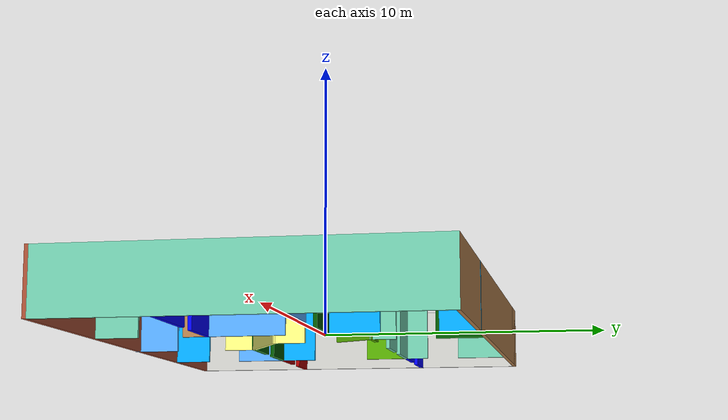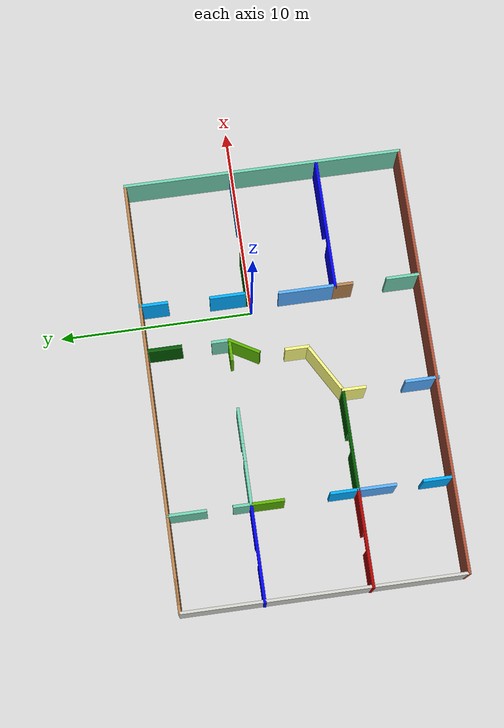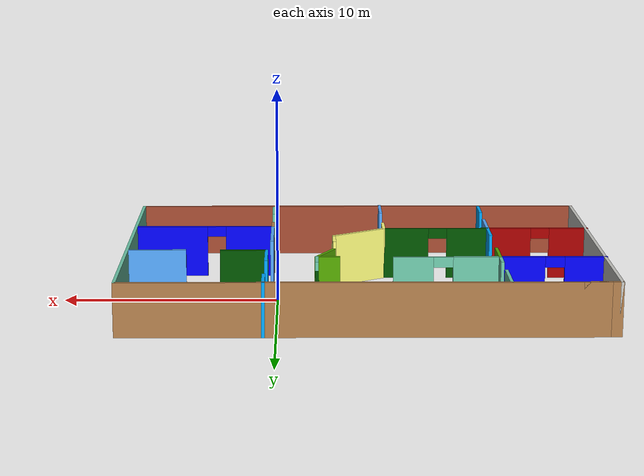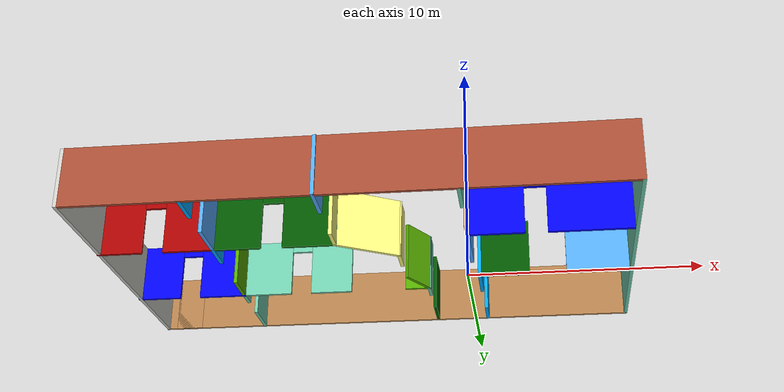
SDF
<?xml version='1.0'?>
<sdf version='1.6'>
  <model name='BuildingThree'>
    <pose frame=''>-4.03643 -1.5479 0 0 -0 0</pose>
    <link name='Wall_0'>
      <collision name='Wall_0_Collision'>
        <geometry>
          <box>
            <size>21.75 0.15 2.5</size>
          </box>
        </geometry>
        <pose frame=''>0 0 1.25 0 -0 0</pose>
      </collision>
      <visual name='Wall_0_Visual'>
        <pose frame=''>0 0 1.25 0 -0 0</pose>
        <geometry>
          <box>
            <size>21.75 0.15 2.5</size>
          </box>
        </geometry>
        <material>
          <script>
            <uri>file://media/materials/scripts/gazebo.material</uri>
            <name>Gazebo/Wood</name>
          </script>
          <ambient>1 1 1 1</ambient>
        </material>
        <meta>
          <layer>0</layer>
        </meta>
      </visual>
      <pose frame=''>0.266002 7.20676 0 0 -0 0</pose>
    </link>
    <link name='Wall_1'>
      <collision name='Wall_1_Collision'>
        <geometry>
          <box>
            <size>14.5 0.15 2.5</size>
          </box>
        </geometry>
        <pose frame=''>0 0 1.25 0 -0 0</pose>
      </collision>
      <visual name='Wall_1_Visual'>
        <pose frame=''>0 0 1.25 0 -0 0</pose>
        <geometry>
          <box>
            <size>14.5 0.15 2.5</size>
          </box>
        </geometry>
        <material>
          <script>
            <uri>file://media/materials/scripts/gazebo.material</uri>
            <name>Gazebo/Grey</name>
          </script>
          <ambient>0.435294 0.796078 0.67451 1</ambient>
        </material>
        <meta>
          <layer>0</layer>
        </meta>
      </visual>
      <pose frame=''>11.066 0.031757 0 0 0 -1.5708</pose>
    </link>
    <link name='Wall_10'>
      <pose frame=''>-8.641 -2.36931 0 0 -0 0</pose>
      <visual name='Wall_10_Visual_0'>
        <pose frame=''>-1.54369 0 1.25 0 -0 0</pose>
        <geometry>
          <box>
            <size>1.91262 0.15 2.5</size>
          </box>
        </geometry>
        <material>
          <script>
            <uri>file://media/materials/scripts/gazebo.material</uri>
            <name>Gazebo/Grey</name>
          </script>
          <ambient>0.666667 0 0 1</ambient>
        </material>
        <meta>
          <layer>0</layer>
        </meta>
      </visual>
      <collision name='Wall_10_Collision_0'>
        <geometry>
          <box>
            <size>1.91262 0.15 2.5</size>
          </box>
        </geometry>
        <pose frame=''>-1.54369 0 1.25 0 -0 0</pose>
      </collision>
      <visual name='Wall_10_Visual_1'>
        <pose frame=''>1.40631 0 1.25 0 -0 0</pose>
        <geometry>
          <box>
            <size>2.18738 0.15 2.5</size>
          </box>
        </geometry>
        <material>
          <script>
            <uri>file://media/materials/scripts/gazebo.material</uri>
            <name>Gazebo/Grey</name>
          </script>
          <ambient>0.666667 0 0 1</ambient>
        </material>
        <meta>
          <layer>0</layer>
        </meta>
      </visual>
      <collision name='Wall_10_Collision_1'>
        <geometry>
          <box>
            <size>2.18738 0.15 2.5</size>
          </box>
        </geometry>
        <pose frame=''>1.40631 0 1.25 0 -0 0</pose>
      </collision>
      <visual name='Wall_10_Visual_2'>
        <pose frame=''>-0.137383 0 2.25 0 -0 0</pose>
        <geometry>
          <box>
            <size>0.9 0.15 0.5</size>
          </box>
        </geometry>
        <material>
          <script>
            <uri>file://media/materials/scripts/gazebo.material</uri>
            <name>Gazebo/Grey</name>
          </script>
          <ambient>0.666667 0 0 1</ambient>
        </material>
        <meta>
          <layer>0</layer>
        </meta>
      </visual>
      <collision name='Wall_10_Collision_2'>
        <geometry>
          <box>
            <size>0.9 0.15 0.5</size>
          </box>
        </geometry>
        <pose frame=''>-0.137383 0 2.25 0 -0 0</pose>
      </collision>
    </link>
    <link name='Wall_11'>
      <collision name='Wall_11_Collision'>
        <geometry>
          <box>
            <size>2 0.15 2.5</size>
          </box>
        </geometry>
        <pose frame=''>0 0 1.25 0 -0 0</pose>
      </collision>
      <visual name='Wall_11_Visual'>
        <pose frame=''>0 0 1.25 0 -0 0</pose>
        <geometry>
          <box>
            <size>2 0.15 2.5</size>
          </box>
        </geometry>
        <material>
          <script>
            <uri>file://media/materials/scripts/gazebo.material</uri>
            <name>Gazebo/Grey</name>
          </script>
          <ambient>0.333333 0.666667 1 1</ambient>
        </material>
        <meta>
          <layer>0</layer>
        </meta>
      </visual>
      <pose frame=''>-6.216 -3.29431 0 0 0 -1.5708</pose>
    </link>
    <link name='Wall_13'>
      <collision name='Wall_13_Collision'>
        <geometry>
          <box>
            <size>1.5 0.15 2.5</size>
          </box>
        </geometry>
        <pose frame=''>0 0 1.25 0 -0 0</pose>
      </collision>
      <visual name='Wall_13_Visual'>
        <pose frame=''>0 0 1.25 0 -0 0</pose>
        <geometry>
          <box>
            <size>1.5 0.15 2.5</size>
          </box>
        </geometry>
        <material>
          <script>
            <uri>file://media/materials/scripts/gazebo.material</uri>
            <name>Gazebo/Grey</name>
          </script>
          <ambient>0 0.666667 1 1</ambient>
        </material>
        <meta>
          <layer>0</layer>
        </meta>
      </visual>
      <pose frame=''>-6.22477 -6.37595 0 0 -0 1.5708</pose>
    </link>
    <link name='Wall_15'>
      <collision name='Wall_15_Collision'>
        <geometry>
          <box>
            <size>2 0.15 2.5</size>
          </box>
        </geometry>
        <pose frame=''>0 0 1.25 0 -0 0</pose>
      </collision>
      <visual name='Wall_15_Visual'>
        <pose frame=''>0 0 1.25 0 -0 0</pose>
        <geometry>
          <box>
            <size>2 0.15 2.5</size>
          </box>
        </geometry>
        <material>
          <script>
            <uri>file://media/materials/scripts/gazebo.material</uri>
            <name>Gazebo/Grey</name>
          </script>
          <ambient>0.435294 0.796078 0.67451 1</ambient>
        </material>
        <meta>
          <layer>0</layer>
        </meta>
      </visual>
      <pose frame=''>-6.22477 6.22856 0 0 0 -1.5708</pose>
    </link>
    <link name='Wall_17'>
      <pose frame=''>-8.641 3.00393 0 0 -0 0</pose>
      <visual name='Wall_17_Visual_0'>
        <pose frame=''>-1.51709 0 1.25 0 -0 0</pose>
        <geometry>
          <box>
            <size>1.96582 0.15 2.5</size>
          </box>
        </geometry>
        <material>
          <script>
            <uri>file://media/materials/scripts/gazebo.material</uri>
            <name>Gazebo/Grey</name>
          </script>
          <ambient>0 0 1 1</ambient>
        </material>
        <meta>
          <layer>0</layer>
        </meta>
      </visual>
      <collision name='Wall_17_Collision_0'>
        <geometry>
          <box>
            <size>1.96582 0.15 2.5</size>
          </box>
        </geometry>
        <pose frame=''>-1.51709 0 1.25 0 -0 0</pose>
      </collision>
      <visual name='Wall_17_Visual_1'>
        <pose frame=''>1.43291 0 1.25 0 -0 0</pose>
        <geometry>
          <box>
            <size>2.13418 0.15 2.5</size>
          </box>
        </geometry>
        <material>
          <script>
            <uri>file://media/materials/scripts/gazebo.material</uri>
            <name>Gazebo/Grey</name>
          </script>
          <ambient>0 0 1 1</ambient>
        </material>
        <meta>
          <layer>0</layer>
        </meta>
      </visual>
      <collision name='Wall_17_Collision_1'>
        <geometry>
          <box>
            <size>2.13418 0.15 2.5</size>
          </box>
        </geometry>
        <pose frame=''>1.43291 0 1.25 0 -0 0</pose>
      </collision>
      <visual name='Wall_17_Visual_2'>
        <pose frame=''>-0.084182 0 2.25 0 -0 0</pose>
        <geometry>
          <box>
            <size>0.9 0.15 0.5</size>
          </box>
        </geometry>
        <material>
          <script>
            <uri>file://media/materials/scripts/gazebo.material</uri>
            <name>Gazebo/Grey</name>
          </script>
          <ambient>0 0 1 1</ambient>
        </material>
        <meta>
          <layer>0</layer>
        </meta>
      </visual>
      <collision name='Wall_17_Collision_2'>
        <geometry>
          <box>
            <size>0.9 0.15 0.5</size>
          </box>
        </geometry>
        <pose frame=''>-0.084182 0 2.25 0 -0 0</pose>
      </collision>
    </link>
    <link name='Wall_18'>
      <collision name='Wall_18_Collision'>
        <geometry>
          <box>
            <size>1 0.15 2.5</size>
          </box>
        </geometry>
        <pose frame=''>0 0 1.25 0 -0 0</pose>
      </collision>
      <visual name='Wall_18_Visual'>
        <pose frame=''>0 0 1.25 0 -0 0</pose>
        <geometry>
          <box>
            <size>1 0.15 2.5</size>
          </box>
        </geometry>
        <material>
          <script>
            <uri>file://media/materials/scripts/gazebo.material</uri>
            <name>Gazebo/Grey</name>
          </script>
          <ambient>0.435294 0.796078 0.67451 1</ambient>
        </material>
        <meta>
          <layer>0</layer>
        </meta>
      </visual>
      <pose frame=''>-6.216 3.42893 0 0 -0 1.5708</pose>
    </link>
    <link name='Wall_2'>
      <collision name='Wall_2_Collision'>
        <geometry>
          <box>
            <size>22.25 0.15 2.5</size>
          </box>
        </geometry>
        <pose frame=''>0 0 1.25 0 -0 0</pose>
      </collision>
      <visual name='Wall_2_Visual'>
        <pose frame=''>0 0 1.25 0 -0 0</pose>
        <geometry>
          <box>
            <size>22.25 0.15 2.5</size>
          </box>
        </geometry>
        <material>
          <script>
            <uri>file://media/materials/scripts/gazebo.material</uri>
            <name>Gazebo/Bricks</name>
          </script>
          <ambient>1 1 1 1</ambient>
        </material>
        <meta>
          <layer>0</layer>
        </meta>
      </visual>
      <pose frame=''>0.016002 -7.14324 0 0 -0 3.14159</pose>
    </link>
    <link name='Wall_20'>
      <collision name='Wall_20_Collision'>
        <geometry>
          <box>
            <size>1.75 0.15 2.5</size>
          </box>
        </geometry>
        <pose frame=''>0 0 1.25 0 -0 0</pose>
      </collision>
      <visual name='Wall_20_Visual'>
        <pose frame=''>0 0 1.25 0 -0 0</pose>
        <geometry>
          <box>
            <size>1.75 0.15 2.5</size>
          </box>
        </geometry>
        <material>
          <script>
            <uri>file://media/materials/scripts/gazebo.material</uri>
            <name>Gazebo/Grey</name>
          </script>
          <ambient>0.333333 0.666667 0 1</ambient>
        </material>
        <meta>
          <layer>0</layer>
        </meta>
      </visual>
      <pose frame=''>-6.216 2.20393 0 0 0 -1.5708</pose>
    </link>
    <link name='Wall_22'>
      <collision name='Wall_22_Collision'>
        <geometry>
          <box>
            <size>1.5 0.15 2.5</size>
          </box>
        </geometry>
        <pose frame=''>0 0 1.25 0 -0 0</pose>
      </collision>
      <visual name='Wall_22_Visual'>
        <pose frame=''>0 0 1.25 0 -0 0</pose>
        <geometry>
          <box>
            <size>1.5 0.15 2.5</size>
          </box>
        </geometry>
        <material>
          <script>
            <uri>file://media/materials/scripts/gazebo.material</uri>
            <name>Gazebo/Grey</name>
          </script>
          <ambient>0 0.666667 1 1</ambient>
        </material>
        <meta>
          <layer>0</layer>
        </meta>
      </visual>
      <pose frame=''>-6.216 -1.69431 0 0 -0 1.5708</pose>
    </link>
    <link name='Wall_24'>
      <pose frame=''>-3.666 -2.36931 0 0 -0 0</pose>
      <visual name='Wall_24_Visual_0'>
        <pose frame=''>-1.58253 0 1.25 0 -0 0</pose>
        <geometry>
          <box>
            <size>2.08493 0.15 2.5</size>
          </box>
        </geometry>
        <material>
          <script>
            <uri>file://media/materials/scripts/gazebo.material</uri>
            <name>Gazebo/Grey</name>
          </script>
          <ambient>0 0.333333 0 1</ambient>
        </material>
        <meta>
          <layer>0</layer>
        </meta>
      </visual>
      <collision name='Wall_24_Collision_0'>
        <geometry>
          <box>
            <size>2.08493 0.15 2.5</size>
          </box>
        </geometry>
        <pose frame=''>-1.58253 0 1.25 0 -0 0</pose>
      </collision>
      <visual name='Wall_24_Visual_1'>
        <pose frame=''>1.49247 0 1.25 0 -0 0</pose>
        <geometry>
          <box>
            <size>2.26507 0.15 2.5</size>
          </box>
        </geometry>
        <material>
          <script>
            <uri>file://media/materials/scripts/gazebo.material</uri>
            <name>Gazebo/Grey</name>
          </script>
          <ambient>0 0.333333 0 1</ambient>
        </material>
        <meta>
          <layer>0</layer>
        </meta>
      </visual>
      <collision name='Wall_24_Collision_1'>
        <geometry>
          <box>
            <size>2.26507 0.15 2.5</size>
          </box>
        </geometry>
        <pose frame=''>1.49247 0 1.25 0 -0 0</pose>
      </collision>
      <visual name='Wall_24_Visual_2'>
        <pose frame=''>-0.090066 0 2.25 0 -0 0</pose>
        <geometry>
          <box>
            <size>0.9 0.15 0.5</size>
          </box>
        </geometry>
        <material>
          <script>
            <uri>file://media/materials/scripts/gazebo.material</uri>
            <name>Gazebo/Grey</name>
          </script>
          <ambient>0 0.333333 0 1</ambient>
        </material>
        <meta>
          <layer>0</layer>
        </meta>
      </visual>
      <collision name='Wall_24_Collision_2'>
        <geometry>
          <box>
            <size>0.9 0.15 0.5</size>
          </box>
        </geometry>
        <pose frame=''>-0.090066 0 2.25 0 -0 0</pose>
      </collision>
    </link>
    <link name='Wall_25'>
      <collision name='Wall_25_Collision'>
        <geometry>
          <box>
            <size>1.25 0.15 2.5</size>
          </box>
        </geometry>
        <pose frame=''>0 0 1.25 0 -0 0</pose>
      </collision>
      <visual name='Wall_25_Visual'>
        <pose frame=''>0 0 1.25 0 -0 0</pose>
        <geometry>
          <box>
            <size>1.25 0.15 2.5</size>
          </box>
        </geometry>
        <material>
          <script>
            <uri>file://media/materials/scripts/gazebo.material</uri>
            <name>Gazebo/Grey</name>
          </script>
          <ambient>1 1 0.498039 1</ambient>
        </material>
        <meta>
          <layer>0</layer>
        </meta>
      </visual>
      <pose frame=''>-1.116 -2.91931 0 0 0 -1.5708</pose>
    </link>
    <link name='Wall_27'>
      <collision name='Wall_27_Collision'>
        <geometry>
          <box>
            <size>1.75 0.15 2.5</size>
          </box>
        </geometry>
        <pose frame=''>0 0 1.25 0 -0 0</pose>
      </collision>
      <visual name='Wall_27_Visual'>
        <pose frame=''>0 0 1.25 0 -0 0</pose>
        <geometry>
          <box>
            <size>1.75 0.15 2.5</size>
          </box>
        </geometry>
        <material>
          <script>
            <uri>file://media/materials/scripts/gazebo.material</uri>
            <name>Gazebo/Grey</name>
          </script>
          <ambient>0.333333 0.666667 1 1</ambient>
        </material>
        <meta>
          <layer>0</layer>
        </meta>
      </visual>
      <pose frame=''>-1.11753 -6.41055 0 0 -0 1.5708</pose>
    </link>
    <link name='Wall_29'>
      <pose frame=''>-3.791 3.00393 0 0 -0 0</pose>
      <visual name='Wall_29_Visual_0'>
        <pose frame=''>-1.37773 0 1.25 0 -0 0</pose>
        <geometry>
          <box>
            <size>2.24453 0.15 2.5</size>
          </box>
        </geometry>
        <material>
          <script>
            <uri>file://media/materials/scripts/gazebo.material</uri>
            <name>Gazebo/Grey</name>
          </script>
          <ambient>0.435294 0.796078 0.67451 1</ambient>
        </material>
        <meta>
          <layer>0</layer>
        </meta>
      </visual>
      <collision name='Wall_29_Collision_0'>
        <geometry>
          <box>
            <size>2.24453 0.15 2.5</size>
          </box>
        </geometry>
        <pose frame=''>-1.37773 0 1.25 0 -0 0</pose>
      </collision>
      <visual name='Wall_29_Visual_1'>
        <pose frame=''>1.57227 0 1.25 0 -0 0</pose>
        <geometry>
          <box>
            <size>1.85546 0.15 2.5</size>
          </box>
        </geometry>
        <material>
          <script>
            <uri>file://media/materials/scripts/gazebo.material</uri>
            <name>Gazebo/Grey</name>
          </script>
          <ambient>0.435294 0.796078 0.67451 1</ambient>
        </material>
        <meta>
          <layer>0</layer>
        </meta>
      </visual>
      <collision name='Wall_29_Collision_1'>
        <geometry>
          <box>
            <size>1.85546 0.15 2.5</size>
          </box>
        </geometry>
        <pose frame=''>1.57227 0 1.25 0 -0 0</pose>
      </collision>
      <visual name='Wall_29_Visual_2'>
        <pose frame=''>0.194535 0 2.25 0 -0 0</pose>
        <geometry>
          <box>
            <size>0.9 0.15 0.5</size>
          </box>
        </geometry>
        <material>
          <script>
            <uri>file://media/materials/scripts/gazebo.material</uri>
            <name>Gazebo/Grey</name>
          </script>
          <ambient>0.435294 0.796078 0.67451 1</ambient>
        </material>
        <meta>
          <layer>0</layer>
        </meta>
      </visual>
      <collision name='Wall_29_Collision_2'>
        <geometry>
          <box>
            <size>0.9 0.15 0.5</size>
          </box>
        </geometry>
        <pose frame=''>0.194535 0 2.25 0 -0 0</pose>
      </collision>
    </link>
    <link name='Wall_3'>
      <collision name='Wall_3_Collision'>
        <geometry>
          <box>
            <size>14.5 0.15 2.5</size>
          </box>
        </geometry>
        <pose frame=''>0 0 1.25 0 -0 0</pose>
      </collision>
      <visual name='Wall_3_Visual'>
        <pose frame=''>0 0 1.25 0 -0 0</pose>
        <geometry>
          <box>
            <size>14.5 0.15 2.5</size>
          </box>
        </geometry>
        <material>
          <script>
            <uri>file://media/materials/scripts/gazebo.material</uri>
            <name>Gazebo/CeilingTiled</name>
          </script>
          <ambient>0 0.666667 1 1</ambient>
        </material>
        <meta>
          <layer>0</layer>
        </meta>
      </visual>
      <pose frame=''>-11.034 0.031757 0 0 -0 1.5708</pose>
    </link>
    <link name='Wall_31'>
      <collision name='Wall_31_Collision'>
        <geometry>
          <box>
            <size>1.75 0.15 2.5</size>
          </box>
        </geometry>
        <pose frame=''>0 0 1.25 0 -0 0</pose>
      </collision>
      <visual name='Wall_31_Visual'>
        <pose frame=''>0 0 1.25 0 -0 0</pose>
        <geometry>
          <box>
            <size>1.75 0.15 2.5</size>
          </box>
        </geometry>
        <material>
          <script>
            <uri>file://media/materials/scripts/gazebo.material</uri>
            <name>Gazebo/Grey</name>
          </script>
          <ambient>0 0.333333 0 1</ambient>
        </material>
        <meta>
          <layer>0</layer>
        </meta>
      </visual>
      <pose frame=''>2.2341 6.24716 0 0 0 -1.5708</pose>
    </link>
    <link name='Wall_35'>
      <collision name='Wall_35_Collision'>
        <geometry>
          <box>
            <size>1.0904 0.15 2.5</size>
          </box>
        </geometry>
        <pose frame=''>0 0 1.25 0 -0 0</pose>
      </collision>
      <visual name='Wall_35_Visual'>
        <pose frame=''>0 0 1.25 0 -0 0</pose>
        <geometry>
          <box>
            <size>1.0904 0.15 2.5</size>
          </box>
        </geometry>
        <material>
          <script>
            <uri>file://media/materials/scripts/gazebo.material</uri>
            <name>Gazebo/Grey</name>
          </script>
          <ambient>0.333333 0.666667 0 1</ambient>
        </material>
        <meta>
          <layer>0</layer>
        </meta>
      </visual>
      <pose frame=''>1.69349 2.95072 0 0 -0 0</pose>
    </link>
    <link name='Wall_36'>
      <collision name='Wall_36_Collision'>
        <geometry>
          <box>
            <size>1 0.15 2.5</size>
          </box>
        </geometry>
        <pose frame=''>0 0 1.25 0 -0 0</pose>
      </collision>
      <visual name='Wall_36_Visual'>
        <pose frame=''>0 0 1.25 0 -0 0</pose>
        <geometry>
          <box>
            <size>1 0.15 2.5</size>
          </box>
        </geometry>
        <material>
          <script>
            <uri>file://media/materials/scripts/gazebo.material</uri>
            <name>Gazebo/Grey</name>
          </script>
          <ambient>0.435294 0.796078 0.67451 1</ambient>
        </material>
        <meta>
          <layer>0</layer>
        </meta>
      </visual>
      <pose frame=''>2.21689 3.37573 0 0 -0 1.5708</pose>
    </link>
    <link name='Wall_38'>
      <collision name='Wall_38_Collision'>
        <geometry>
          <box>
            <size>1.75 0.15 2.5</size>
          </box>
        </geometry>
        <pose frame=''>0 0 1.25 0 -0 0</pose>
      </collision>
      <visual name='Wall_38_Visual'>
        <pose frame=''>0 0 1.25 0 -0 0</pose>
        <geometry>
          <box>
            <size>1.75 0.15 2.5</size>
          </box>
        </geometry>
        <material>
          <script>
            <uri>file://media/materials/scripts/gazebo.material</uri>
            <name>Gazebo/Grey</name>
          </script>
          <ambient>0.435294 0.796078 0.67451 1</ambient>
        </material>
        <meta>
          <layer>0</layer>
        </meta>
      </visual>
      <pose frame=''>4.33039 -6.30036 0 0 -0 1.5708</pose>
    </link>
    <link name='Wall_4'>
      <collision name='Wall_4_Collision'>
        <geometry>
          <box>
            <size>1.75 0.15 2.5</size>
          </box>
        </geometry>
        <pose frame=''>0 0 1.25 0 -0 0</pose>
      </collision>
      <visual name='Wall_4_Visual'>
        <pose frame=''>0 0 1.25 0 -0 0</pose>
        <geometry>
          <box>
            <size>1.75 0.15 2.5</size>
          </box>
        </geometry>
        <material>
          <script>
            <uri>file://media/materials/scripts/gazebo.material</uri>
            <name>Gazebo/Wood</name>
          </script>
          <ambient>1 1 1 1</ambient>
        </material>
        <meta>
          <layer>0</layer>
        </meta>
      </visual>
      <pose frame=''>-10.234 7.20676 0 0 -0 0</pose>
    </link>
    <link name='Wall_40'>
      <collision name='Wall_40_Collision'>
        <geometry>
          <box>
            <size>1 0.15 2.5</size>
          </box>
        </geometry>
        <pose frame=''>0 0 1.25 0 -0 0</pose>
      </collision>
      <visual name='Wall_40_Visual'>
        <pose frame=''>0 0 1.25 0 -0 0</pose>
        <geometry>
          <box>
            <size>1 0.15 2.5</size>
          </box>
        </geometry>
        <material>
          <script>
            <uri>file://media/materials/scripts/gazebo.material</uri>
            <name>Gazebo/Wood</name>
          </script>
          <ambient>1 1 1 1</ambient>
        </material>
        <meta>
          <layer>0</layer>
        </meta>
      </visual>
      <pose frame=''>4.33039 -3.21733 0 0 -0 1.5708</pose>
    </link>
    <link name='Wall_41'>
      <pose frame=''>7.63039 -2.79233 0 0 -0 0</pose>
      <visual name='Wall_41_Visual_0'>
        <pose frame=''>-2.17929 0 1.25 0 -0 0</pose>
        <geometry>
          <box>
            <size>2.39142 0.15 2.5</size>
          </box>
        </geometry>
        <material>
          <script>
            <uri>file://media/materials/scripts/gazebo.material</uri>
            <name>Gazebo/Grey</name>
          </script>
          <ambient>0 0 1 1</ambient>
        </material>
        <meta>
          <layer>0</layer>
        </meta>
      </visual>
      <collision name='Wall_41_Collision_0'>
        <geometry>
          <box>
            <size>2.39142 0.15 2.5</size>
          </box>
        </geometry>
        <pose frame=''>-2.17929 0 1.25 0 -0 0</pose>
      </collision>
      <visual name='Wall_41_Visual_1'>
        <pose frame=''>1.64571 0 1.25 0 -0 0</pose>
        <geometry>
          <box>
            <size>3.45858 0.15 2.5</size>
          </box>
        </geometry>
        <material>
          <script>
            <uri>file://media/materials/scripts/gazebo.material</uri>
            <name>Gazebo/Grey</name>
          </script>
          <ambient>0 0 1 1</ambient>
        </material>
        <meta>
          <layer>0</layer>
        </meta>
      </visual>
      <collision name='Wall_41_Collision_1'>
        <geometry>
          <box>
            <size>3.45858 0.15 2.5</size>
          </box>
        </geometry>
        <pose frame=''>1.64571 0 1.25 0 -0 0</pose>
      </collision>
      <visual name='Wall_41_Visual_2'>
        <pose frame=''>-0.533579 0 2.25 0 -0 0</pose>
        <geometry>
          <box>
            <size>0.9 0.15 0.5</size>
          </box>
        </geometry>
        <material>
          <script>
            <uri>file://media/materials/scripts/gazebo.material</uri>
            <name>Gazebo/Grey</name>
          </script>
          <ambient>0 0 1 1</ambient>
        </material>
        <meta>
          <layer>0</layer>
        </meta>
      </visual>
      <collision name='Wall_41_Collision_2'>
        <geometry>
          <box>
            <size>0.9 0.15 0.5</size>
          </box>
        </geometry>
        <pose frame=''>-0.533579 0 2.25 0 -0 0</pose>
      </collision>
    </link>
    <link name='Wall_43'>
      <collision name='Wall_43_Collision'>
        <geometry>
          <box>
            <size>3 0.15 2.5</size>
          </box>
        </geometry>
        <pose frame=''>0 0 1.25 0 -0 0</pose>
      </collision>
      <visual name='Wall_43_Visual'>
        <pose frame=''>0 0 1.25 0 -0 0</pose>
        <geometry>
          <box>
            <size>3 0.15 2.5</size>
          </box>
        </geometry>
        <material>
          <script>
            <uri>file://media/materials/scripts/gazebo.material</uri>
            <name>Gazebo/Grey</name>
          </script>
          <ambient>1 1 0.498039 1</ambient>
        </material>
        <meta>
          <layer>0</layer>
        </meta>
      </visual>
      <pose frame=''>0.118084 -1.65681 0 0 -0 0.523599</pose>
    </link>
    <link name='Wall_44'>
      <collision name='Wall_44_Collision'>
        <geometry>
          <box>
            <size>1.25 0.15 2.5</size>
          </box>
        </geometry>
        <pose frame=''>0 0 1.25 0 -0 0</pose>
      </collision>
      <visual name='Wall_44_Visual'>
        <pose frame=''>0 0 1.25 0 -0 0</pose>
        <geometry>
          <box>
            <size>1.25 0.15 2.5</size>
          </box>
        </geometry>
        <material>
          <script>
            <uri>file://media/materials/scripts/gazebo.material</uri>
            <name>Gazebo/Grey</name>
          </script>
          <ambient>1 1 0.498039 1</ambient>
        </material>
        <meta>
          <layer>0</layer>
        </meta>
      </visual>
      <pose frame=''>1.35217 -0.394315 0 0 -0 1.5708</pose>
    </link>
    <link name='Wall_46'>
      <collision name='Wall_46_Collision'>
        <geometry>
          <box>
            <size>1.75 0.15 2.5</size>
          </box>
        </geometry>
        <pose frame=''>0 0 1.25 0 -0 0</pose>
      </collision>
      <visual name='Wall_46_Visual'>
        <pose frame=''>0 0 1.25 0 -0 0</pose>
        <geometry>
          <box>
            <size>1.75 0.15 2.5</size>
          </box>
        </geometry>
        <material>
          <script>
            <uri>file://media/materials/scripts/gazebo.material</uri>
            <name>Gazebo/Grey</name>
          </script>
          <ambient>0.333333 0.666667 0 1</ambient>
        </material>
        <meta>
          <layer>0</layer>
        </meta>
      </visual>
      <pose frame=''>1.81689 2.25791 0 0 0 -2.0944</pose>
    </link>
    <link name='Wall_48'>
      <collision name='Wall_48_Collision'>
        <geometry>
          <box>
            <size>3 0.15 2.5</size>
          </box>
        </geometry>
        <pose frame=''>0 0 1.25 0 -0 0</pose>
      </collision>
      <visual name='Wall_48_Visual'>
        <pose frame=''>0 0 1.25 0 -0 0</pose>
        <geometry>
          <box>
            <size>3 0.15 2.5</size>
          </box>
        </geometry>
        <material>
          <script>
            <uri>file://media/materials/scripts/gazebo.material</uri>
            <name>Gazebo/Grey</name>
          </script>
          <ambient>0.333333 0.666667 1 1</ambient>
        </material>
        <meta>
          <layer>0</layer>
        </meta>
      </visual>
      <pose frame=''>4.33039 -1.36733 0 0 -0 1.5708</pose>
    </link>
    <link name='Wall_50'>
      <collision name='Wall_50_Collision'>
        <geometry>
          <box>
            <size>2 0.15 2.5</size>
          </box>
        </geometry>
        <pose frame=''>0 0 1.25 0 -0 0</pose>
      </collision>
      <visual name='Wall_50_Visual'>
        <pose frame=''>0 0 1.25 0 -0 0</pose>
        <geometry>
          <box>
            <size>2 0.15 2.5</size>
          </box>
        </geometry>
        <material>
          <script>
            <uri>file://media/materials/scripts/gazebo.material</uri>
            <name>Gazebo/Grey</name>
          </script>
          <ambient>0 0.666667 1 1</ambient>
        </material>
        <meta>
          <layer>0</layer>
        </meta>
      </visual>
      <pose frame=''>4.54319 2.65591 0 0 -0 1.5708</pose>
    </link>
    <link name='Wall_52'>
      <collision name='Wall_52_Collision'>
        <geometry>
          <box>
            <size>2.25 0.15 2.5</size>
          </box>
        </geometry>
        <pose frame=''>0 0 1.25 0 -0 0</pose>
      </collision>
      <visual name='Wall_52_Visual'>
        <pose frame=''>0 0 1.25 0 -0 0</pose>
        <geometry>
          <box>
            <size>2.25 0.15 2.5</size>
          </box>
        </geometry>
        <material>
          <script>
            <uri>file://media/materials/scripts/gazebo.material</uri>
            <name>Gazebo/Grey</name>
          </script>
          <ambient>0 0.333333 0 1</ambient>
        </material>
        <meta>
          <layer>0</layer>
        </meta>
      </visual>
      <pose frame=''>5.59319 1.73091 0 0 -0 0</pose>
    </link>
    <link name='Wall_54'>
      <collision name='Wall_54_Collision'>
        <geometry>
          <box>
            <size>2.75 0.15 2.5</size>
          </box>
        </geometry>
        <pose frame=''>0 0 1.25 0 -0 0</pose>
      </collision>
      <visual name='Wall_54_Visual'>
        <pose frame=''>0 0 1.25 0 -0 0</pose>
        <geometry>
          <box>
            <size>2.75 0.15 2.5</size>
          </box>
        </geometry>
        <material>
          <script>
            <uri>file://media/materials/scripts/gazebo.material</uri>
            <name>Gazebo/Grey</name>
          </script>
          <ambient>0.333333 0.666667 1 1</ambient>
        </material>
        <meta>
          <layer>0</layer>
        </meta>
      </visual>
      <pose frame=''>9.67362 1.67771 0 0 -0 0</pose>
    </link>
    <link name='Wall_56'>
      <collision name='Wall_56_Collision'>
        <geometry>
          <box>
            <size>1.5 0.15 2.5</size>
          </box>
        </geometry>
        <pose frame=''>0 0 1.25 0 -0 0</pose>
      </collision>
      <visual name='Wall_56_Visual'>
        <pose frame=''>0 0 1.25 0 -0 0</pose>
        <geometry>
          <box>
            <size>1.5 0.15 2.5</size>
          </box>
        </geometry>
        <material>
          <script>
            <uri>file://media/materials/scripts/gazebo.material</uri>
            <name>Gazebo/Grey</name>
          </script>
          <ambient>0 0.666667 1 1</ambient>
        </material>
        <meta>
          <layer>0</layer>
        </meta>
      </visual>
      <pose frame=''>4.59639 6.53555 0 0 0 -1.5708</pose>
    </link>
    <static>1</static>
  </model>
</sdf>
